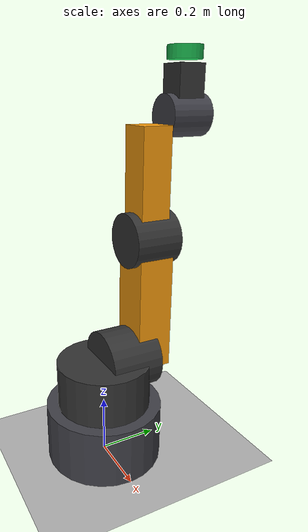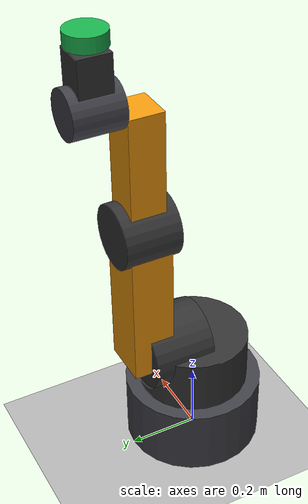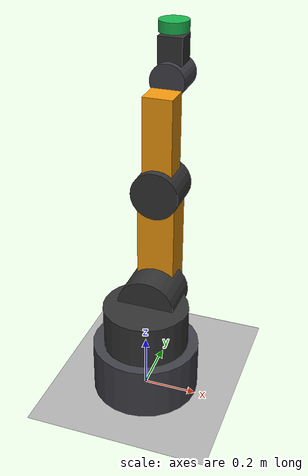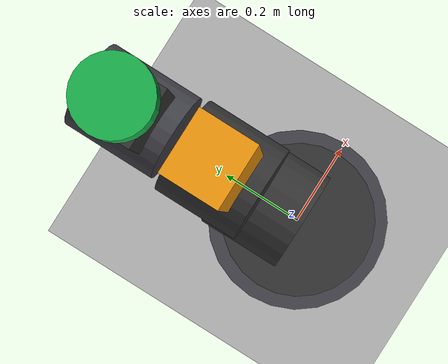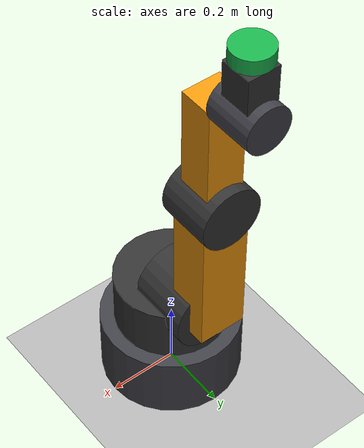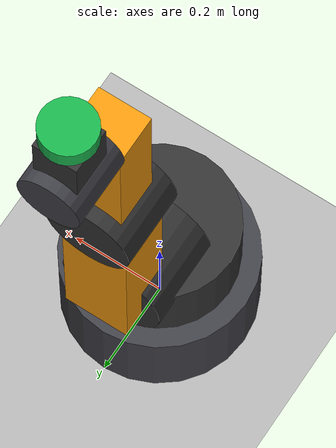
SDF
<?xml version="1.0" ?>
<sdf version="1.9">

  <world name="robot_world">

    <physics name="1ms" type="ode">
      <max_step_size>0.001</max_step_size>
      <real_time_factor>1</real_time_factor>
    </physics>

    <!-- World Plugins -->
    <plugin filename="gz-sim-physics-system" name="gz::sim::systems::Physics"/>
    <plugin filename="gz-sim-user-commands-system" name="gz::sim::systems::UserCommands"/>
    <plugin filename="gz-sim-scene-broadcaster-system" name="gz::sim::systems::SceneBroadcaster"/>

    <!-- Scene Lighting -->
    <scene>
      <ambient>0.6 0.6 0.6 1</ambient>
      <background>0.85 0.9 0.95 1</background>
      <shadows>true</shadows>
    </scene>

    <light type="directional" name="sun">
      <cast_shadows>true</cast_shadows>
      <pose>5 5 10 0 0 0</pose>
      <diffuse>0.9 0.9 0.9 1</diffuse>
      <specular>0.2 0.2 0.2 1</specular>
      <direction>-0.5 -0.5 -1</direction>
    </light>

    <!-- Ground Plane -->
    <model name="ground">
      <static>true</static>
      <link name="ground_link">
        <collision name="collision">
          <geometry>
            <plane><normal>0 0 1</normal><size>20 20</size></plane>
          </geometry>
        </collision>
        <visual name="visual">
          <geometry>
            <plane><normal>0 0 1</normal><size>20 20</size></plane>
          </geometry>
          <material>
            <ambient>0.7 0.7 0.7 1</ambient>
            <diffuse>0.7 0.7 0.7 1</diffuse>
          </material>
        </visual>
      </link>
    </model>

    <!-- 6-DOF Industrial Articulated Robot -->
    <model name="robot_6dof">

      <!-- Telemetry Plugin -->
      <plugin filename="gz-sim-joint-state-publisher-system" name="gz::sim::systems::JointStatePublisher"/>

      <!-- Stiff Industrial PID Controllers -->
      <plugin filename="gz-sim-joint-position-controller-system" name="gz::sim::systems::JointPositionController">
        <joint_name>joint_1</joint_name>
        <p_gain>600</p_gain><i_gain>1.0</i_gain><d_gain>30</d_gain>
        <topic>/model/robot_6dof/joint/joint_1/cmd_pos</topic>
      </plugin>

      <plugin filename="gz-sim-joint-position-controller-system" name="gz::sim::systems::JointPositionController">
        <joint_name>joint_2</joint_name>
        <p_gain>1500</p_gain><i_gain>3.0</i_gain><d_gain>100</d_gain>
        <topic>/model/robot_6dof/joint/joint_2/cmd_pos</topic>
      </plugin>

      <plugin filename="gz-sim-joint-position-controller-system" name="gz::sim::systems::JointPositionController">
        <joint_name>joint_3</joint_name>
        <p_gain>1000</p_gain><i_gain>2.0</i_gain><d_gain>60</d_gain>
        <topic>/model/robot_6dof/joint/joint_3/cmd_pos</topic>
      </plugin>

      <plugin filename="gz-sim-joint-position-controller-system" name="gz::sim::systems::JointPositionController">
        <joint_name>joint_4</joint_name>
        <p_gain>300</p_gain><i_gain>0.5</i_gain><d_gain>20</d_gain>
        <topic>/model/robot_6dof/joint/joint_4/cmd_pos</topic>
      </plugin>

      <plugin filename="gz-sim-joint-position-controller-system" name="gz::sim::systems::JointPositionController">
        <joint_name>joint_5</joint_name>
        <p_gain>200</p_gain><i_gain>0.2</i_gain><d_gain>10</d_gain>
        <topic>/model/robot_6dof/joint/joint_5/cmd_pos</topic>
      </plugin>

      <!-- Controller plugin for joint_6 with effort limits -->
      <plugin filename="gz-sim-joint-position-controller-system" name="gz::sim::systems::JointPositionController">
        <joint_name>joint_6</joint_name>
        <p_gain>800</p_gain><i_gain>2.0</i_gain><d_gain>10</d_gain>
        <i_max>10.0</i_max>
        <i_min>-10.0</i_min>
        <cmd_max>50.0</cmd_max>
        <cmd_min>-50.0</cmd_min>
        <topic>/model/robot_6dof/joint/joint_6/cmd_pos</topic>
      </plugin>

      <!-- BASE LINK (Cast Aluminum Pedestal) -->
      <link name="base">
        <pose>0 0 0.1 0 0 0</pose>
        <inertial>
          <mass>15.0</mass>
          <inertia><ixx>0.4</ixx><iyy>0.4</iyy><izz>0.4</izz></inertia>
        </inertial>
        <visual name="pedestal">
          <geometry><cylinder><radius>0.2</radius><length>0.2</length></cylinder></geometry>
          <material><ambient>0.25 0.25 0.28 1</ambient><diffuse>0.25 0.25 0.28 1</diffuse></material>
        </visual>
      </link>

      <joint name="world_fixed_joint" type="fixed">
        <parent>world</parent>
        <child>base</child>
      </joint>

      <!-- LINK 1: Shoulder Base (Yaw) -->
      <link name="link_1">
        <pose>0 0 0.28 0 0 0</pose>
        <inertial><mass>5.0</mass><inertia><ixx>0.08</ixx><iyy>0.08</iyy><izz>0.08</izz></inertia></inertial>
        <visual name="shoulder_housing">
          <geometry><cylinder><radius>0.16</radius><length>0.16</length></cylinder></geometry>
          <material><ambient>0.2 0.2 0.2 1</ambient><diffuse>0.2 0.2 0.2 1</diffuse></material>
        </visual>
      </link>

      <joint name="joint_1" type="revolute">
        <parent>base</parent>
        <child>link_1</child>
        <pose>0 0 -0.08 0 0 0</pose>
        <axis>
          <xyz>0 0 1</xyz>
          <limit><lower>-3.14159</lower><upper>3.14159</upper></limit>
          <dynamics><damping>15.0</damping><friction>3.0</friction></dynamics>
        </axis>
      </joint>

      <!-- LINK 2: Upper Arm (Industrial Yellow) -->
      <link name="link_2">
        <pose>0 0.16 0.55 0 0 0</pose>
        <inertial><mass>4.5</mass><inertia><ixx>0.1</ixx><iyy>0.1</iyy><izz>0.03</izz></inertia></inertial>
        <!-- Horizontal Joint Hub -->
        <visual name="j2_hub">
          <pose>0 -0.08 -0.2 1.5708 0 0</pose>
          <geometry><cylinder><radius>0.11</radius><length>0.18</length></cylinder></geometry>
          <material><ambient>0.2 0.2 0.2 1</ambient><diffuse>0.2 0.2 0.2 1</diffuse></material>
        </visual>
        <!-- Main Upper Arm Body -->
        <visual name="upper_arm_body">
          <geometry><box><size>0.14 0.12 0.45</size></box></geometry>
          <material><ambient>0.95 0.6 0.05 1</ambient><diffuse>0.95 0.6 0.05 1</diffuse></material>
        </visual>
      </link>

      <joint name="joint_2" type="revolute">
        <parent>link_1</parent>
        <child>link_2</child>
        <pose>0 -0.08 -0.2 0 0 0</pose>
        <axis>
          <xyz>0 1 0</xyz>
          <limit><lower>-1.5708</lower><upper>1.5708</upper></limit>
          <dynamics><damping>25.0</damping><friction>6.0</friction></dynamics>
        </axis>
      </joint>

      <!-- LINK 3: Forearm (Industrial Yellow) -->
      <link name="link_3">
        <pose>0 0.16 0.95 0 0 0</pose>
        <inertial><mass>2.8</mass><inertia><ixx>0.05</ixx><iyy>0.05</iyy><izz>0.01</izz></inertia></inertial>
        <!-- Horizontal Elbow Joint Hub -->
        <visual name="j3_hub">
          <pose>0 0 -0.18 1.5708 0 0</pose>
          <geometry><cylinder><radius>0.09</radius><length>0.16</length></cylinder></geometry>
          <material><ambient>0.2 0.2 0.2 1</ambient><diffuse>0.2 0.2 0.2 1</diffuse></material>
        </visual>
        <!-- Forearm Body -->
        <visual name="forearm_body">
          <geometry><box><size>0.11 0.1 0.35</size></box></geometry>
          <material><ambient>0.95 0.6 0.05 1</ambient><diffuse>0.95 0.6 0.05 1</diffuse></material>
        </visual>
      </link>

      <joint name="joint_3" type="revolute">
        <parent>link_2</parent>
        <child>link_3</child>
        <pose>0 0 -0.18 0 0 0</pose>
        <axis>
          <xyz>0 1 0</xyz>
          <limit><lower>-2.0</lower><upper>2.0</upper></limit>
          <dynamics><damping>18.0</damping><friction>4.0</friction></dynamics>
        </axis>
      </joint>

      <!-- LINK 4: Wrist Pitch (Dark Metallic) -->
      <link name="link_4">
        <pose>0 0.28 1.15 0 0 0</pose>
        <inertial><mass>1.2</mass><inertia><ixx>0.01</ixx><iyy>0.01</iyy><izz>0.005</izz></inertia></inertial>
        <visual name="wrist_pitch_body">
          <pose>0 0 0 1.5708 0 0</pose>
          <geometry><cylinder><radius>0.065</radius><length>0.14</length></cylinder></geometry>
          <material><ambient>0.25 0.25 0.28 1</ambient><diffuse>0.25 0.25 0.28 1</diffuse></material>
        </visual>
      </link>

      <joint name="joint_4" type="revolute">
        <parent>link_3</parent>
        <child>link_4</child>
        <pose>0 -0.12 -0.02 0 0 0</pose>
        <axis>
          <xyz>0 1 0</xyz>
          <limit><lower>-1.5708</lower><upper>1.5708</upper></limit>
          <dynamics><damping>6.0</damping><friction>1.2</friction></dynamics>
        </axis>
      </joint>

      <!-- LINK 5: Wrist Roll (Dark Metallic) -->
      <link name="link_5">
        <pose>0 0.28 1.25 0 0 0</pose>
        <inertial><mass>0.6</mass><inertia><ixx>0.003</ixx><iyy>0.003</iyy><izz>0.002</izz></inertia></inertial>
        <visual name="wrist_roll_body">
          <geometry><box><size>0.09 0.09 0.1</size></box></geometry>
          <material><ambient>0.2 0.2 0.2 1</ambient><diffuse>0.2 0.2 0.2 1</diffuse></material>
        </visual>
      </link>

      <joint name="joint_5" type="revolute">
        <parent>link_4</parent>
        <child>link_5</child>
        <pose>0 0 -0.05 0 0 0</pose>
        <axis>
          <xyz>1 0 0</xyz>
          <limit><lower>-3.14159</lower><upper>3.14159</upper></limit>
          <dynamics><damping>4.0</damping><friction>0.8</friction></dynamics>
        </axis>
      </joint>

      <!-- LINK 6: Industrial Tool Flange -->
      <link name="link_6">
        <pose>0 0.28 1.33 0 0 0</pose>
        <inertial>
          <mass>0.5</mass>
          <inertia><ixx>0.01</ixx><iyy>0.01</iyy><izz>0.01</izz></inertia>
        </inertial>
        <visual name="tool_flange">
          <geometry><cylinder><radius>0.055</radius><length>0.04</length></cylinder></geometry>
          <material><ambient>0.1 0.7 0.3 1</ambient><diffuse>0.1 0.7 0.3 1</diffuse></material>
        </visual>
      </link>

      <joint name="joint_6" type="revolute">
        <parent>link_5</parent>
        <child>link_6</child>
        <pose>0 0 0 0 0 0</pose>
        <axis>
          <xyz>0 0 1</xyz>
          <limit><lower>-3.14159</lower><upper>3.14159</upper></limit>
          <dynamics><damping>0.1</damping><friction>0.01</friction></dynamics>
        </axis>
      </joint>

    </model>

  </world>
</sdf>
